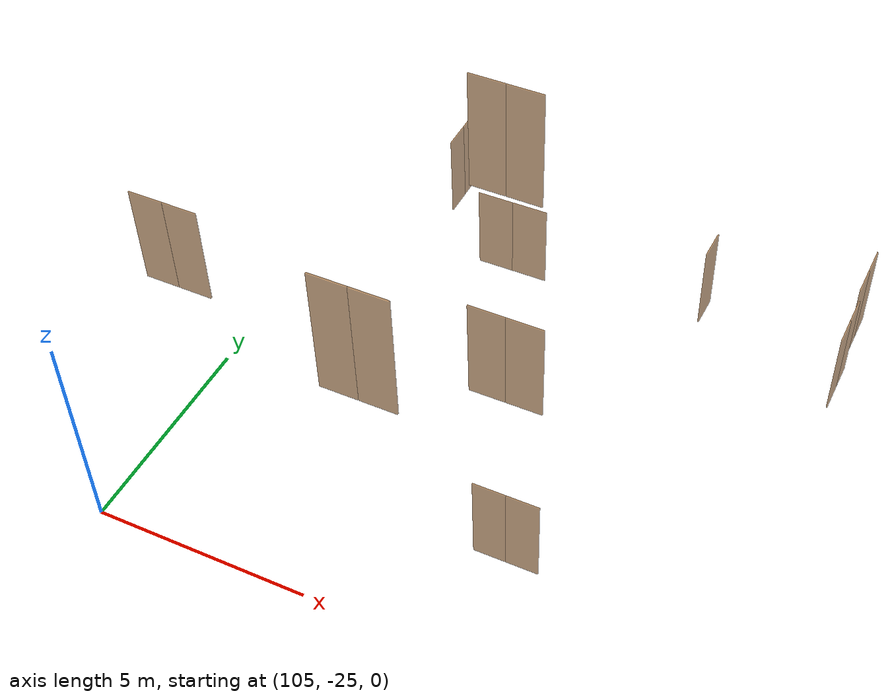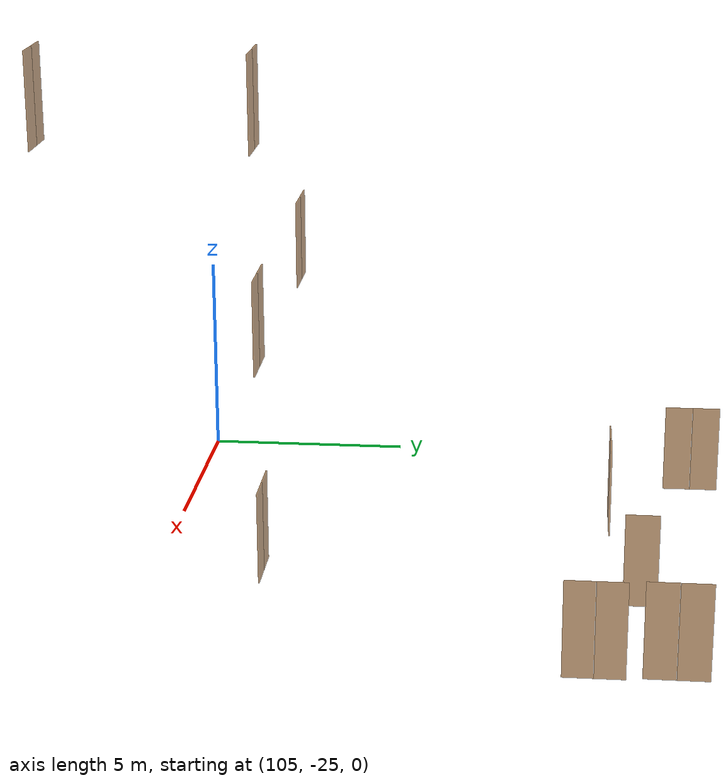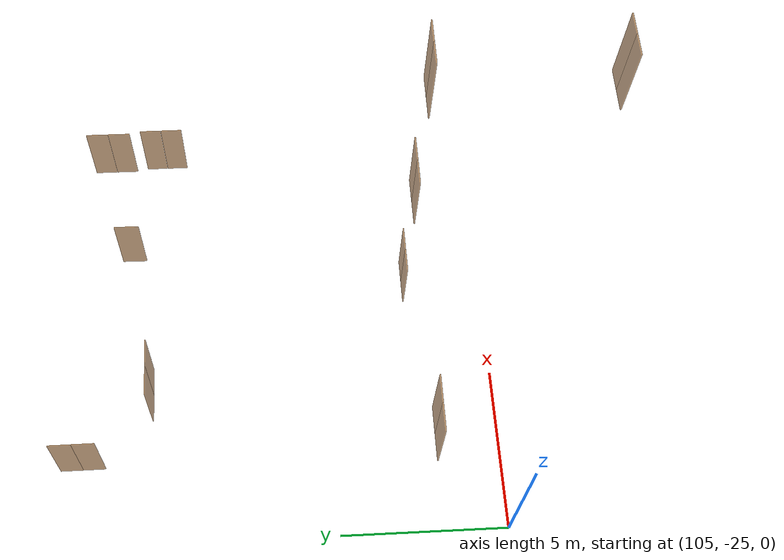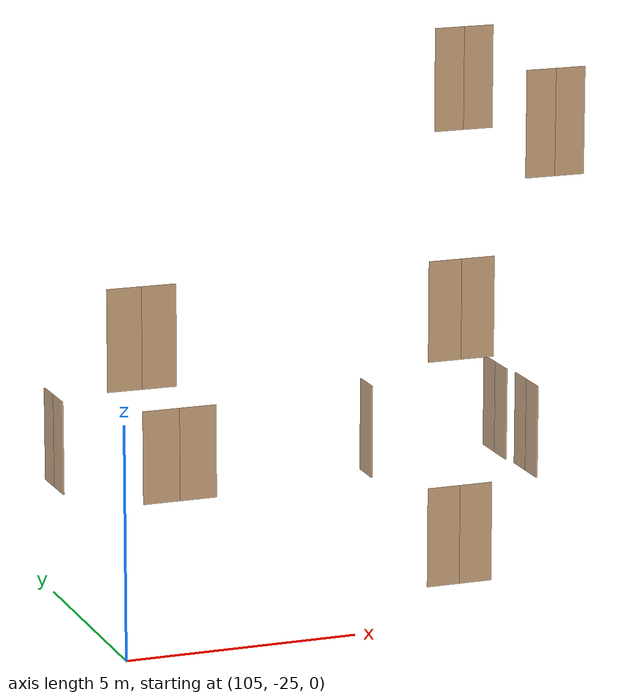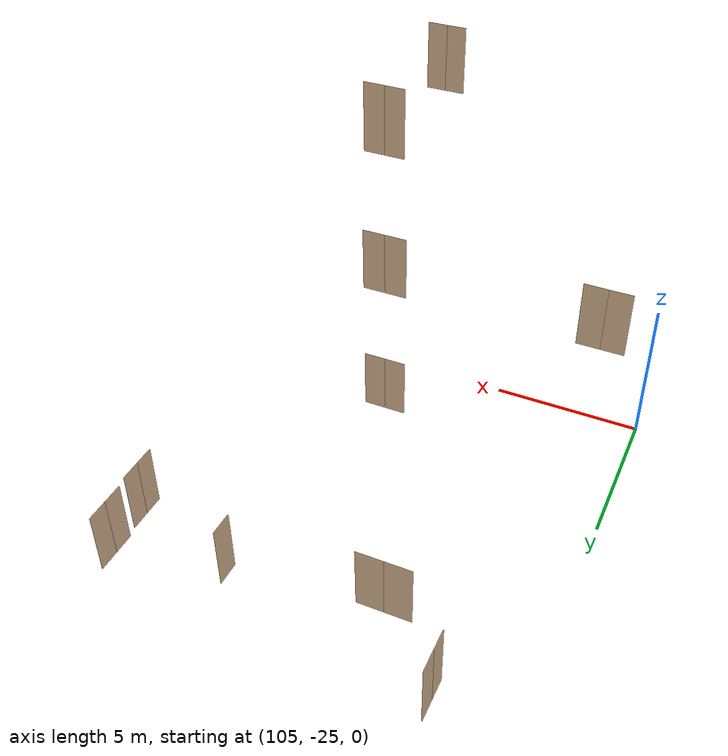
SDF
<sdf version="1.7">
 <world name="sim_world">
  <model name="p112">
   <pose>107.4338389973631 -12.339289946964545 0.0 0 0 -1.5663911402931476</pose>
   <link name="right">
    <pose>0.3430209425628117 0 1.11 0 0 0</pose>
    <visual name="right_visual">
     <geometry><box><size>0.6760418851256234 0.03 2.2</size></box></geometry>
     <material>
      <ambient>0.5 0.25 0 0.6</ambient>
      <diffuse>0.5 0.25 0 0.6</diffuse>
      <pbr><metal><metalness>0.0</metalness></metal></pbr>
     </material>
    </visual>
    <collision name="right_collision">
     <geometry><box><size>0.6760418851256234 0.03 2.2</size></box></geometry>
     <surface><contact><collide_bitmask>0x02</collide_bitmask></contact></surface>
    </collision>
    <inertial>
     <mass>50.0</mass>
     <inertia><ixx>20.17041666666667</ixx><iyy>22.07096929351753</iyy><izz>1.9080526268508606</izz></inertia>
    </inertial>
   </link>
   <joint name="right_joint" type="revolute">
    <parent>world</parent>
    <child>right</child>
    <axis><xyz>0 0 -1</xyz><limit><lower>0</lower><upper>1.57</upper></limit></axis>
    <pose>0.3430209425628117 0 0 0 0 0</pose>
   </joint>
   <link name="left">
    <pose>-0.3430209425628117 0 1.11 0 0 0</pose>
    <visual name="left_visual">
     <geometry><box><size>0.6760418851256234 0.03 2.2</size></box></geometry>
     <material>
      <ambient>0.5 0.25 0 0.6</ambient>
      <diffuse>0.5 0.25 0 0.6</diffuse>
      <pbr><metal><metalness>0.0</metalness></metal></pbr>
     </material>
    </visual>
    <collision name="left_collision">
     <geometry><box><size>0.6760418851256234 0.03 2.2</size></box></geometry>
     <surface><contact><collide_bitmask>0x02</collide_bitmask></contact></surface>
    </collision>
    <inertial>
     <mass>50.0</mass>
     <inertia><ixx>20.17041666666667</ixx><iyy>22.07096929351753</iyy><izz>1.9080526268508606</izz></inertia>
    </inertial>
   </link>
   <joint name="left_joint" type="revolute">
    <parent>world</parent>
    <child>left</child>
    <axis><xyz>0 0 -1</xyz><limit><lower>-1.57</lower><upper>0</upper></limit></axis>
    <pose>-0.3430209425628117 0 0 0 0 0</pose>
   </joint>
   <plugin name="register_component" filename="libregister_component.so">
    <component name="Door">
     <v_max_door>0.5</v_max_door>
     <a_max_door>0.3</a_max_door>
     <a_nom_door>0.15</a_nom_door>
     <dx_min_door>0.01</dx_min_door>
     <f_max_door>500.0</f_max_door>
     <ros_interface>true</ros_interface>
     <door name="p112" type="DoubleSwingDoor" left_joint_name="left_joint" right_joint_name="right_joint"/>
    </component>
   </plugin>
  </model>
  <model name="p117">
   <pose>118.13045539391435 -13.108078279162108 0.0 0 0 1.561031990154289</pose>
   <link name="right">
    <pose>0.35502862784012107 0 1.11 0 0 0</pose>
    <visual name="right_visual">
     <geometry><box><size>0.7000572556802421 0.03 2.2</size></box></geometry>
     <material>
      <ambient>0.5 0.25 0 0.6</ambient>
      <diffuse>0.5 0.25 0 0.6</diffuse>
      <pbr><metal><metalness>0.0</metalness></metal></pbr>
     </material>
    </visual>
    <collision name="right_collision">
     <geometry><box><size>0.7000572556802421 0.03 2.2</size></box></geometry>
     <surface><contact><collide_bitmask>0x02</collide_bitmask></contact></surface>
    </collision>
    <inertial>
     <mass>50.0</mass>
     <inertia><ixx>20.17041666666667</ixx><iyy>22.20866733846064</iyy><izz>2.0457506717939666</izz></inertia>
    </inertial>
   </link>
   <joint name="right_joint" type="revolute">
    <parent>world</parent>
    <child>right</child>
    <axis><xyz>0 0 -1</xyz><limit><lower>0</lower><upper>1.57</upper></limit></axis>
    <pose>0.35502862784012107 0 0 0 0 0</pose>
   </joint>
   <link name="left">
    <pose>-0.35502862784012107 0 1.11 0 0 0</pose>
    <visual name="left_visual">
     <geometry><box><size>0.7000572556802421 0.03 2.2</size></box></geometry>
     <material>
      <ambient>0.5 0.25 0 0.6</ambient>
      <diffuse>0.5 0.25 0 0.6</diffuse>
      <pbr><metal><metalness>0.0</metalness></metal></pbr>
     </material>
    </visual>
    <collision name="left_collision">
     <geometry><box><size>0.7000572556802421 0.03 2.2</size></box></geometry>
     <surface><contact><collide_bitmask>0x02</collide_bitmask></contact></surface>
    </collision>
    <inertial>
     <mass>50.0</mass>
     <inertia><ixx>20.17041666666667</ixx><iyy>22.20866733846064</iyy><izz>2.0457506717939666</izz></inertia>
    </inertial>
   </link>
   <joint name="left_joint" type="revolute">
    <parent>world</parent>
    <child>left</child>
    <axis><xyz>0 0 -1</xyz><limit><lower>-1.57</lower><upper>0</upper></limit></axis>
    <pose>-0.35502862784012107 0 0 0 0 0</pose>
   </joint>
   <plugin name="register_component" filename="libregister_component.so">
    <component name="Door">
     <v_max_door>0.5</v_max_door>
     <a_max_door>0.3</a_max_door>
     <a_nom_door>0.15</a_nom_door>
     <dx_min_door>0.01</dx_min_door>
     <f_max_door>500.0</f_max_door>
     <ros_interface>true</ros_interface>
     <door name="p117" type="DoubleSwingDoor" left_joint_name="left_joint" right_joint_name="right_joint"/>
    </component>
   </plugin>
  </model>
  <model name="p118">
   <pose>118.19614233652345 -14.829982815324001 0.0 0 0 1.5641435229054723</pose>
   <link name="right">
    <pose>0.3390307908886256 0 1.11 0 0 0</pose>
    <visual name="right_visual">
     <geometry><box><size>0.6680615817772512 0.03 2.2</size></box></geometry>
     <material>
      <ambient>0.5 0.25 0 0.6</ambient>
      <diffuse>0.5 0.25 0 0.6</diffuse>
      <pbr><metal><metalness>0.0</metalness></metal></pbr>
     </material>
    </visual>
    <collision name="right_collision">
     <geometry><box><size>0.6680615817772512 0.03 2.2</size></box></geometry>
     <surface><contact><collide_bitmask>0x02</collide_bitmask></contact></surface>
    </collision>
    <inertial>
     <mass>50.0</mass>
     <inertia><ixx>20.17041666666667</ixx><iyy>22.02627615436135</iyy><izz>1.8633594876946789</izz></inertia>
    </inertial>
   </link>
   <joint name="right_joint" type="revolute">
    <parent>world</parent>
    <child>right</child>
    <axis><xyz>0 0 -1</xyz><limit><lower>0</lower><upper>1.57</upper></limit></axis>
    <pose>0.3390307908886256 0 0 0 0 0</pose>
   </joint>
   <link name="left">
    <pose>-0.3390307908886256 0 1.11 0 0 0</pose>
    <visual name="left_visual">
     <geometry><box><size>0.6680615817772512 0.03 2.2</size></box></geometry>
     <material>
      <ambient>0.5 0.25 0 0.6</ambient>
      <diffuse>0.5 0.25 0 0.6</diffuse>
      <pbr><metal><metalness>0.0</metalness></metal></pbr>
     </material>
    </visual>
    <collision name="left_collision">
     <geometry><box><size>0.6680615817772512 0.03 2.2</size></box></geometry>
     <surface><contact><collide_bitmask>0x02</collide_bitmask></contact></surface>
    </collision>
    <inertial>
     <mass>50.0</mass>
     <inertia><ixx>20.17041666666667</ixx><iyy>22.02627615436135</iyy><izz>1.8633594876946789</izz></inertia>
    </inertial>
   </link>
   <joint name="left_joint" type="revolute">
    <parent>world</parent>
    <child>left</child>
    <axis><xyz>0 0 -1</xyz><limit><lower>-1.57</lower><upper>0</upper></limit></axis>
    <pose>-0.3390307908886256 0 0 0 0 0</pose>
   </joint>
   <plugin name="register_component" filename="libregister_component.so">
    <component name="Door">
     <v_max_door>0.5</v_max_door>
     <a_max_door>0.3</a_max_door>
     <a_nom_door>0.15</a_nom_door>
     <dx_min_door>0.01</dx_min_door>
     <f_max_door>500.0</f_max_door>
     <ros_interface>true</ros_interface>
     <door name="p118" type="DoubleSwingDoor" left_joint_name="left_joint" right_joint_name="right_joint"/>
    </component>
   </plugin>
  </model>
  <model name="p119">
   <pose>114.59911558176063 -13.78126944386834 0.0 0 0 1.5541373404600665</pose>
   <link name="right">
    <pose>0 0 1.11 0 0 0</pose>
    <visual name="right_visual">
     <geometry><box><size>0.7743744893911615 0.03 2.2</size></box></geometry>
     <material>
      <ambient>0.5 0.25 0 0.6</ambient>
      <diffuse>0.5 0.25 0 0.6</diffuse>
      <pbr><metal><metalness>0.0</metalness></metal></pbr>
     </material>
    </visual>
    <collision name="right_collision">
     <geometry><box><size>0.7743744893911615 0.03 2.2</size></box></geometry>
     <surface><contact><collide_bitmask>0x02</collide_bitmask></contact></surface>
    </collision>
    <inertial>
     <mass>50.0</mass>
     <inertia><ixx>20.17041666666667</ixx><iyy>22.665232707582597</iyy><izz>2.5023160409159257</izz></inertia>
    </inertial>
   </link>
   <joint name="right_joint" type="revolute">
    <parent>world</parent>
    <child>right</child>
    <axis><xyz>0 0 -1</xyz><limit><lower>0</lower><upper>1.57</upper></limit></axis>
    <pose>0.39218724469558075 0 0 0 0 0</pose>
   </joint>
   <plugin name="register_component" filename="libregister_component.so">
    <component name="Door">
     <v_max_door>0.5</v_max_door>
     <a_max_door>0.3</a_max_door>
     <a_nom_door>0.15</a_nom_door>
     <dx_min_door>0.01</dx_min_door>
     <f_max_door>500.0</f_max_door>
     <ros_interface>true</ros_interface>
     <door name="p119" type="SwingDoor" left_joint_name="empty_joint" right_joint_name="right_joint"/>
    </component>
   </plugin>
  </model>
  <model name="p120">
   <pose>109.78253607300533 -14.431327960653029 0.0 0 0 0.006919094748939667</pose>
   <link name="right">
    <pose>0.4448141347491114 0 1.11 0 0 0</pose>
    <visual name="right_visual">
     <geometry><box><size>0.8796282694982228 0.03 2.2</size></box></geometry>
     <material>
      <ambient>0.5 0.25 0 0.6</ambient>
      <diffuse>0.5 0.25 0 0.6</diffuse>
      <pbr><metal><metalness>0.0</metalness></metal></pbr>
     </material>
    </visual>
    <collision name="right_collision">
     <geometry><box><size>0.8796282694982228 0.03 2.2</size></box></geometry>
     <surface><contact><collide_bitmask>0x02</collide_bitmask></contact></surface>
    </collision>
    <inertial>
     <mass>50.0</mass>
     <inertia><ixx>20.17041666666667</ixx><iyy>23.390607885418497</iyy><izz>3.2276912187518256</izz></inertia>
    </inertial>
   </link>
   <joint name="right_joint" type="revolute">
    <parent>world</parent>
    <child>right</child>
    <axis><xyz>0 0 -1</xyz><limit><lower>0</lower><upper>1.57</upper></limit></axis>
    <pose>0.4448141347491114 0 0 0 0 0</pose>
   </joint>
   <link name="left">
    <pose>-0.4448141347491114 0 1.11 0 0 0</pose>
    <visual name="left_visual">
     <geometry><box><size>0.8796282694982228 0.03 2.2</size></box></geometry>
     <material>
      <ambient>0.5 0.25 0 0.6</ambient>
      <diffuse>0.5 0.25 0 0.6</diffuse>
      <pbr><metal><metalness>0.0</metalness></metal></pbr>
     </material>
    </visual>
    <collision name="left_collision">
     <geometry><box><size>0.8796282694982228 0.03 2.2</size></box></geometry>
     <surface><contact><collide_bitmask>0x02</collide_bitmask></contact></surface>
    </collision>
    <inertial>
     <mass>50.0</mass>
     <inertia><ixx>20.17041666666667</ixx><iyy>23.390607885418497</iyy><izz>3.2276912187518256</izz></inertia>
    </inertial>
   </link>
   <joint name="left_joint" type="revolute">
    <parent>world</parent>
    <child>left</child>
    <axis><xyz>0 0 -1</xyz><limit><lower>-1.57</lower><upper>0</upper></limit></axis>
    <pose>-0.4448141347491114 0 0 0 0 0</pose>
   </joint>
   <plugin name="register_component" filename="libregister_component.so">
    <component name="Door">
     <v_max_door>0.5</v_max_door>
     <a_max_door>0.3</a_max_door>
     <a_nom_door>0.15</a_nom_door>
     <dx_min_door>0.01</dx_min_door>
     <f_max_door>500.0</f_max_door>
     <ros_interface>true</ros_interface>
     <door name="p120" type="DoubleSwingDoor" left_joint_name="left_joint" right_joint_name="right_joint"/>
    </component>
   </plugin>
  </model>
  <model name="p121">
   <pose>113.38300717015801 -22.480433913069255 0.0 0 0 -3.138829198080483</pose>
   <link name="right">
    <pose>0.37190706730799605 0 1.11 0 0 0</pose>
    <visual name="right_visual">
     <geometry><box><size>0.7338141346159921 0.03 2.2</size></box></geometry>
     <material>
      <ambient>0.5 0.25 0 0.6</ambient>
      <diffuse>0.5 0.25 0 0.6</diffuse>
      <pbr><metal><metalness>0.0</metalness></metal></pbr>
     </material>
    </visual>
    <collision name="right_collision">
     <geometry><box><size>0.7338141346159921 0.03 2.2</size></box></geometry>
     <surface><contact><collide_bitmask>0x02</collide_bitmask></contact></surface>
    </collision>
    <inertial>
     <mass>50.0</mass>
     <inertia><ixx>20.17041666666667</ixx><iyy>22.41034660067591</iyy><izz>2.2474299340092396</izz></inertia>
    </inertial>
   </link>
   <joint name="right_joint" type="revolute">
    <parent>world</parent>
    <child>right</child>
    <axis><xyz>0 0 -1</xyz><limit><lower>0</lower><upper>1.57</upper></limit></axis>
    <pose>0.37190706730799605 0 0 0 0 0</pose>
   </joint>
   <link name="left">
    <pose>-0.37190706730799605 0 1.11 0 0 0</pose>
    <visual name="left_visual">
     <geometry><box><size>0.7338141346159921 0.03 2.2</size></box></geometry>
     <material>
      <ambient>0.5 0.25 0 0.6</ambient>
      <diffuse>0.5 0.25 0 0.6</diffuse>
      <pbr><metal><metalness>0.0</metalness></metal></pbr>
     </material>
    </visual>
    <collision name="left_collision">
     <geometry><box><size>0.7338141346159921 0.03 2.2</size></box></geometry>
     <surface><contact><collide_bitmask>0x02</collide_bitmask></contact></surface>
    </collision>
    <inertial>
     <mass>50.0</mass>
     <inertia><ixx>20.17041666666667</ixx><iyy>22.41034660067591</iyy><izz>2.2474299340092396</izz></inertia>
    </inertial>
   </link>
   <joint name="left_joint" type="revolute">
    <parent>world</parent>
    <child>left</child>
    <axis><xyz>0 0 -1</xyz><limit><lower>-1.57</lower><upper>0</upper></limit></axis>
    <pose>-0.37190706730799605 0 0 0 0 0</pose>
   </joint>
   <plugin name="register_component" filename="libregister_component.so">
    <component name="Door">
     <v_max_door>0.5</v_max_door>
     <a_max_door>0.3</a_max_door>
     <a_nom_door>0.15</a_nom_door>
     <dx_min_door>0.01</dx_min_door>
     <f_max_door>500.0</f_max_door>
     <ros_interface>true</ros_interface>
     <door name="p121" type="DoubleSwingDoor" left_joint_name="left_joint" right_joint_name="right_joint"/>
    </component>
   </plugin>
  </model>
  <model name="puerta85">
   <pose>106.22247615065467 -22.472238726677418 5.0 0 0 3.136929400195506</pose>
   <link name="right">
    <pose>0.37953715098137003 0 1.11 0 0 0</pose>
    <visual name="right_visual">
     <geometry><box><size>0.74907430196274 0.03 2.2</size></box></geometry>
     <material>
      <ambient>0.5 0.25 0 0.6</ambient>
      <diffuse>0.5 0.25 0 0.6</diffuse>
      <pbr><metal><metalness>0.0</metalness></metal></pbr>
     </material>
    </visual>
    <collision name="right_collision">
     <geometry><box><size>0.74907430196274 0.03 2.2</size></box></geometry>
     <surface><contact><collide_bitmask>0x02</collide_bitmask></contact></surface>
    </collision>
    <inertial>
     <mass>50.0</mass>
     <inertia><ixx>20.17041666666667</ixx><iyy>22.504634624420696</iyy><izz>2.3417179577540264</izz></inertia>
    </inertial>
   </link>
   <joint name="right_joint" type="revolute">
    <parent>world</parent>
    <child>right</child>
    <axis><xyz>0 0 -1</xyz><limit><lower>0</lower><upper>1.57</upper></limit></axis>
    <pose>0.37953715098137003 0 0 0 0 0</pose>
   </joint>
   <link name="left">
    <pose>-0.37953715098137003 0 1.11 0 0 0</pose>
    <visual name="left_visual">
     <geometry><box><size>0.74907430196274 0.03 2.2</size></box></geometry>
     <material>
      <ambient>0.5 0.25 0 0.6</ambient>
      <diffuse>0.5 0.25 0 0.6</diffuse>
      <pbr><metal><metalness>0.0</metalness></metal></pbr>
     </material>
    </visual>
    <collision name="left_collision">
     <geometry><box><size>0.74907430196274 0.03 2.2</size></box></geometry>
     <surface><contact><collide_bitmask>0x02</collide_bitmask></contact></surface>
    </collision>
    <inertial>
     <mass>50.0</mass>
     <inertia><ixx>20.17041666666667</ixx><iyy>22.504634624420696</iyy><izz>2.3417179577540264</izz></inertia>
    </inertial>
   </link>
   <joint name="left_joint" type="revolute">
    <parent>world</parent>
    <child>left</child>
    <axis><xyz>0 0 -1</xyz><limit><lower>-1.57</lower><upper>0</upper></limit></axis>
    <pose>-0.37953715098137003 0 0 0 0 0</pose>
   </joint>
   <plugin name="register_component" filename="libregister_component.so">
    <component name="Door">
     <v_max_door>0.5</v_max_door>
     <a_max_door>0.3</a_max_door>
     <a_nom_door>0.15</a_nom_door>
     <dx_min_door>0.01</dx_min_door>
     <f_max_door>500.0</f_max_door>
     <ros_interface>true</ros_interface>
     <door name="puerta85" type="DoubleSwingDoor" left_joint_name="left_joint" right_joint_name="right_joint"/>
    </component>
   </plugin>
  </model>
  <model name="puerta86">
   <pose>113.37711026765807 -22.47771097793574 5.0 0 0 -3.1382469371499533</pose>
   <link name="right">
    <pose>0.3759009646781338 0 1.11 0 0 0</pose>
    <visual name="right_visual">
     <geometry><box><size>0.7418019293562675 0.03 2.2</size></box></geometry>
     <material>
      <ambient>0.5 0.25 0 0.6</ambient>
      <diffuse>0.5 0.25 0 0.6</diffuse>
      <pbr><metal><metalness>0.0</metalness></metal></pbr>
     </material>
    </visual>
    <collision name="right_collision">
     <geometry><box><size>0.7418019293562675 0.03 2.2</size></box></geometry>
     <surface><contact><collide_bitmask>0x02</collide_bitmask></contact></surface>
    </collision>
    <inertial>
     <mass>50.0</mass>
     <inertia><ixx>20.17041666666667</ixx><iyy>22.459458759986173</iyy><izz>2.296542093319504</izz></inertia>
    </inertial>
   </link>
   <joint name="right_joint" type="revolute">
    <parent>world</parent>
    <child>right</child>
    <axis><xyz>0 0 -1</xyz><limit><lower>0</lower><upper>1.57</upper></limit></axis>
    <pose>0.3759009646781338 0 0 0 0 0</pose>
   </joint>
   <link name="left">
    <pose>-0.3759009646781338 0 1.11 0 0 0</pose>
    <visual name="left_visual">
     <geometry><box><size>0.7418019293562675 0.03 2.2</size></box></geometry>
     <material>
      <ambient>0.5 0.25 0 0.6</ambient>
      <diffuse>0.5 0.25 0 0.6</diffuse>
      <pbr><metal><metalness>0.0</metalness></metal></pbr>
     </material>
    </visual>
    <collision name="left_collision">
     <geometry><box><size>0.7418019293562675 0.03 2.2</size></box></geometry>
     <surface><contact><collide_bitmask>0x02</collide_bitmask></contact></surface>
    </collision>
    <inertial>
     <mass>50.0</mass>
     <inertia><ixx>20.17041666666667</ixx><iyy>22.459458759986173</iyy><izz>2.296542093319504</izz></inertia>
    </inertial>
   </link>
   <joint name="left_joint" type="revolute">
    <parent>world</parent>
    <child>left</child>
    <axis><xyz>0 0 -1</xyz><limit><lower>-1.57</lower><upper>0</upper></limit></axis>
    <pose>-0.3759009646781338 0 0 0 0 0</pose>
   </joint>
   <plugin name="register_component" filename="libregister_component.so">
    <component name="Door">
     <v_max_door>0.5</v_max_door>
     <a_max_door>0.3</a_max_door>
     <a_nom_door>0.15</a_nom_door>
     <dx_min_door>0.01</dx_min_door>
     <f_max_door>500.0</f_max_door>
     <ros_interface>true</ros_interface>
     <door name="puerta86" type="DoubleSwingDoor" left_joint_name="left_joint" right_joint_name="right_joint"/>
    </component>
   </plugin>
  </model>
  <model name="puerta160">
   <pose>113.38354480374147 -22.483593143556185 10.0 0 0 3.1371612338677988</pose>
   <link name="right">
    <pose>0.3271069423933372 0 1.11 0 0 0</pose>
    <visual name="right_visual">
     <geometry><box><size>0.6442138847866744 0.03 2.2</size></box></geometry>
     <material>
      <ambient>0.5 0.25 0 0.6</ambient>
      <diffuse>0.5 0.25 0 0.6</diffuse>
      <pbr><metal><metalness>0.0</metalness></metal></pbr>
     </material>
    </visual>
    <collision name="right_collision">
     <geometry><box><size>0.6442138847866744 0.03 2.2</size></box></geometry>
     <surface><contact><collide_bitmask>0x02</collide_bitmask></contact></surface>
    </collision>
    <inertial>
     <mass>50.0</mass>
     <inertia><ixx>20.17041666666667</ixx><iyy>21.89588137229975</iyy><izz>1.7329647056330777</izz></inertia>
    </inertial>
   </link>
   <joint name="right_joint" type="revolute">
    <parent>world</parent>
    <child>right</child>
    <axis><xyz>0 0 -1</xyz><limit><lower>0</lower><upper>1.57</upper></limit></axis>
    <pose>0.3271069423933372 0 0 0 0 0</pose>
   </joint>
   <link name="left">
    <pose>-0.3271069423933372 0 1.11 0 0 0</pose>
    <visual name="left_visual">
     <geometry><box><size>0.6442138847866744 0.03 2.2</size></box></geometry>
     <material>
      <ambient>0.5 0.25 0 0.6</ambient>
      <diffuse>0.5 0.25 0 0.6</diffuse>
      <pbr><metal><metalness>0.0</metalness></metal></pbr>
     </material>
    </visual>
    <collision name="left_collision">
     <geometry><box><size>0.6442138847866744 0.03 2.2</size></box></geometry>
     <surface><contact><collide_bitmask>0x02</collide_bitmask></contact></surface>
    </collision>
    <inertial>
     <mass>50.0</mass>
     <inertia><ixx>20.17041666666667</ixx><iyy>21.89588137229975</iyy><izz>1.7329647056330777</izz></inertia>
    </inertial>
   </link>
   <joint name="left_joint" type="revolute">
    <parent>world</parent>
    <child>left</child>
    <axis><xyz>0 0 -1</xyz><limit><lower>-1.57</lower><upper>0</upper></limit></axis>
    <pose>-0.3271069423933372 0 0 0 0 0</pose>
   </joint>
   <plugin name="register_component" filename="libregister_component.so">
    <component name="Door">
     <v_max_door>0.5</v_max_door>
     <a_max_door>0.3</a_max_door>
     <a_nom_door>0.15</a_nom_door>
     <dx_min_door>0.01</dx_min_door>
     <f_max_door>500.0</f_max_door>
     <ros_interface>true</ros_interface>
     <door name="puerta160" type="DoubleSwingDoor" left_joint_name="left_joint" right_joint_name="right_joint"/>
    </component>
   </plugin>
  </model>
  <model name="puerta161">
   <pose>113.37457022341167 -27.321361602024517 10.0 0 0 -0.0019171845515983529</pose>
   <link name="right">
    <pose>0.31643075740041215 0 1.11 0 0 0</pose>
    <visual name="right_visual">
     <geometry><box><size>0.6228615148008243 0.03 2.2</size></box></geometry>
     <material>
      <ambient>0.5 0.25 0 0.6</ambient>
      <diffuse>0.5 0.25 0 0.6</diffuse>
      <pbr><metal><metalness>0.0</metalness></metal></pbr>
     </material>
    </visual>
    <collision name="right_collision">
     <geometry><box><size>0.6228615148008243 0.03 2.2</size></box></geometry>
     <surface><contact><collide_bitmask>0x02</collide_bitmask></contact></surface>
    </collision>
    <inertial>
     <mass>50.0</mass>
     <inertia><ixx>20.17041666666667</ixx><iyy>21.78315194424991</iyy><izz>1.6202352775832396</izz></inertia>
    </inertial>
   </link>
   <joint name="right_joint" type="revolute">
    <parent>world</parent>
    <child>right</child>
    <axis><xyz>0 0 -1</xyz><limit><lower>0</lower><upper>1.57</upper></limit></axis>
    <pose>0.31643075740041215 0 0 0 0 0</pose>
   </joint>
   <link name="left">
    <pose>-0.31643075740041215 0 1.11 0 0 0</pose>
    <visual name="left_visual">
     <geometry><box><size>0.6228615148008243 0.03 2.2</size></box></geometry>
     <material>
      <ambient>0.5 0.25 0 0.6</ambient>
      <diffuse>0.5 0.25 0 0.6</diffuse>
      <pbr><metal><metalness>0.0</metalness></metal></pbr>
     </material>
    </visual>
    <collision name="left_collision">
     <geometry><box><size>0.6228615148008243 0.03 2.2</size></box></geometry>
     <surface><contact><collide_bitmask>0x02</collide_bitmask></contact></surface>
    </collision>
    <inertial>
     <mass>50.0</mass>
     <inertia><ixx>20.17041666666667</ixx><iyy>21.78315194424991</iyy><izz>1.6202352775832396</izz></inertia>
    </inertial>
   </link>
   <joint name="left_joint" type="revolute">
    <parent>world</parent>
    <child>left</child>
    <axis><xyz>0 0 -1</xyz><limit><lower>-1.57</lower><upper>0</upper></limit></axis>
    <pose>-0.31643075740041215 0 0 0 0 0</pose>
   </joint>
   <plugin name="register_component" filename="libregister_component.so">
    <component name="Door">
     <v_max_door>0.5</v_max_door>
     <a_max_door>0.3</a_max_door>
     <a_nom_door>0.15</a_nom_door>
     <dx_min_door>0.01</dx_min_door>
     <f_max_door>500.0</f_max_door>
     <ros_interface>true</ros_interface>
     <door name="puerta161" type="DoubleSwingDoor" left_joint_name="left_joint" right_joint_name="right_joint"/>
    </component>
   </plugin>
  </model>
 </world>
</sdf>
